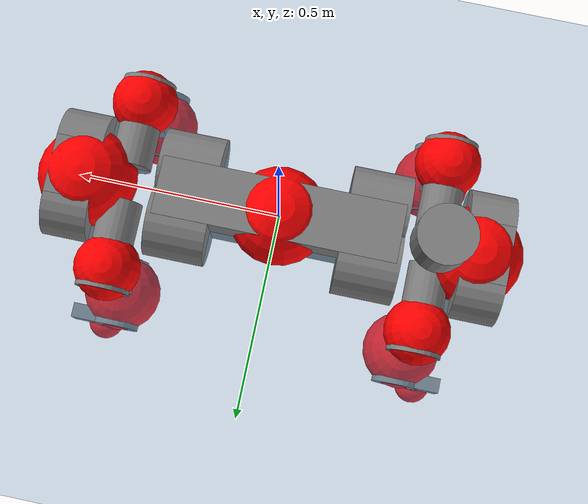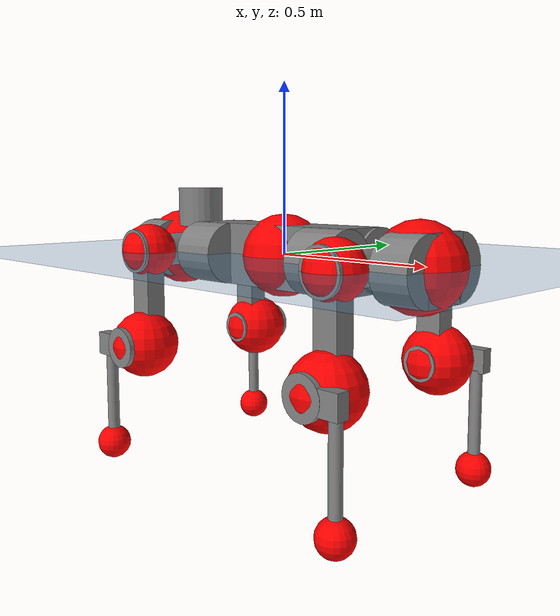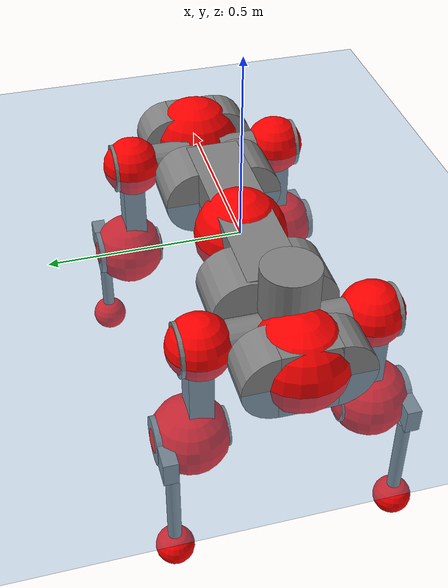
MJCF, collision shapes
<mujoco model="anymal_c">
  <compiler angle="radian" assetdir="assets" balanceinertia="true" inertiafromgeom="false"/>

  <option timestep="0.005" density="1.2" viscosity="2e-05"/>

  <size nkey="1"/>

  <visual>
    <quality shadowsize="8192"/>
    <map shadowclip="0.5"/>
  </visual>

  <default>
    <default class="/">
      <material specular="0" shininess="0.25"/>
      <geom contype="0" conaffinity="0" group="1" solref="-1000 -80"/>
      <site size="0.01 0.005 0.005" group="5"/>
      <general forcelimited="true" forcerange="-80 80" biastype="affine" gainprm="80" biasprm="0 -80 -2"/>
      <default class="anymal_c">
        <joint armature="0.01" damping="0.01" frictionloss="0.1"/>
        <default class="visual">
          <geom type="mesh" group="2"/>
          <default class="visual_zflip"/>
        </default>
        <default class="collision">
          <geom type="cylinder" group="3"/>
          <default class="foot">
            <geom size="0.03 0 0" type="sphere" condim="6" priority="1" friction="0.8 0.02 0.01" solimp="0.015 1 0.03"/>
          </default>
        </default>
      </default>
      <default class="reward_collision_sphere">
        <geom group="5" rgba="1 0 0 1"/>
      </default>
    </default>
  </default>

  <asset>
    <texture type="skybox" colorspace="auto" name="//unnamed_texture_0" builtin="gradient" rgb1="0.95 0.95 0.95" rgb2="0.95 0.95 0.95" width="100" height="600"/>
    <texture type="2d" colorspace="auto" name="texplane" builtin="checker" rgb1="0.345 0.575 0.748" rgb2="0.345 0.575 0.748" markrgb="1 1 1" width="512" height="512"/>
    <texture type="2d" colorspace="linear" name="base" file="base.png"/>
    <texture type="2d" colorspace="linear" name="top_shell" file="top_shell.png"/>
    <texture type="2d" colorspace="linear" name="bottom_shell" file="bottom_shell.png"/>
    <texture type="2d" colorspace="linear" name="remote" file="remote.png"/>
    <texture type="2d" colorspace="linear" name="hatch" file="hatch.png"/>
    <texture type="2d" colorspace="linear" name="handle" file="handle.png"/>
    <texture type="2d" colorspace="linear" name="face" file="face.png"/>
    <texture type="2d" colorspace="linear" name="battery" file="battery.png"/>
    <texture type="2d" colorspace="linear" name="lidar_cage" file="lidar_cage.png"/>
    <texture type="2d" colorspace="linear" name="depth_camera" file="depth_camera.png"/>
    <texture type="2d" colorspace="linear" name="wide_angle_camera" file="wide_angle_camera.png"/>
    <texture type="2d" colorspace="linear" name="lidar" file="lidar.png"/>
    <texture type="2d" colorspace="linear" name="drive" file="drive.png"/>
    <texture type="2d" colorspace="linear" name="hip_l" file="hip_l.png"/>
    <texture type="2d" colorspace="linear" name="shank_l" file="shank_l.png"/>
    <texture type="2d" colorspace="linear" name="foot" file="foot.png"/>
    <texture type="2d" colorspace="linear" name="thigh" file="thigh.png"/>
    <texture type="2d" colorspace="linear" name="shank_r" file="shank_r.png"/>
    <texture type="2d" colorspace="linear" name="hip_r" file="hip_r.png"/>
    <material name="MatPlane" class="/" texture="texplane" texuniform="true" texrepeat="2 2" specular="0.9" shininess="0.5"/>
    <material name="black_plastic" class="/" rgba="0.007 0.007 0.007 1"/>
    <material name="green" class="/" rgba="0.052 0.178 0.033 1"/>
    <material name="red" class="/" rgba="0.178 0.006 0.005 1"/>
    <material name="yellow" class="/" rgba="0.178 0.119 0.006 1"/>
    <material name="lwl" class="/" rgba="0.8 0.8 0.8 1"/>
    <material name="base" class="/" texture="base"/>
    <material name="top_shell" class="/" texture="top_shell"/>
    <material name="bottom_shell" class="/" texture="bottom_shell"/>
    <material name="hip_l" class="/" texture="hip_l"/>
    <material name="thigh" class="/" texture="thigh"/>
    <material name="shank_l" class="/" texture="shank_l"/>
    <material name="foot" class="/" texture="foot"/>
    <material name="hip_r" class="/" texture="hip_r"/>
    <material name="shank" class="/" texture="shank_r"/>
    <material name="hatch" class="/" texture="hatch"/>
    <material name="remote" class="/" texture="remote"/>
    <material name="handle" class="/" texture="handle"/>
    <material name="face" class="/" texture="face"/>
    <material name="depth_camera" class="/" texture="depth_camera"/>
    <material name="wide_angle_camera" class="/" texture="wide_angle_camera"/>
    <material name="battery" class="/" texture="battery"/>
    <material name="lidar_cage" class="/" texture="lidar_cage"/>
    <material name="lidar" class="/" texture="lidar"/>
    <material name="drive" class="/" texture="drive"/>
    <mesh name="base_0" class="/" file="base_0.obj"/>
    <mesh name="base_1" class="/" file="base_1.obj"/>
    <mesh name="base_2" class="/" file="base_2.obj"/>
    <mesh name="base_3" class="/" file="base_3.obj"/>
    <mesh name="base_4" class="/" file="base_4.obj"/>
    <mesh name="base_5" class="/" file="base_5.obj"/>
    <mesh name="top_shell" class="/" file="top_shell.obj"/>
    <mesh name="bottom_shell" class="/" file="bottom_shell.obj"/>
    <mesh name="remote" class="/" file="remote.obj"/>
    <mesh name="handle" class="/" file="handle.obj"/>
    <mesh name="face" class="/" file="face.obj"/>
    <mesh name="wide_angle_camera" class="/" file="wide_angle_camera.obj"/>
    <mesh name="depth_camera" class="/" file="depth_camera.obj"/>
    <mesh name="battery" class="/" file="battery.obj"/>
    <mesh name="lidar_cage" class="/" file="lidar_cage.obj"/>
    <mesh name="lidar" class="/" file="lidar.obj"/>
    <mesh name="drive" class="/" file="drive.obj"/>
    <mesh name="hip_l" class="/" file="hip_l.obj"/>
    <mesh name="thigh" class="/" file="thigh.obj"/>
    <mesh name="shank_l" class="/" file="shank_l.obj"/>
    <mesh name="foot" class="/" file="foot.obj"/>
    <mesh name="hip_r" class="/" file="hip_r.obj"/>
    <mesh name="hatch" class="/" file="hatch.obj"/>
    <mesh name="shank_r" class="/" file="shank_r.obj"/>
  </asset>

  <worldbody>
    <geom name="floor" class="/" size="100 100 0.125" type="plane" group="0" material="MatPlane"/>
    <light name="toplight_shadow" class="/" pos="0 0 5" dir="0.0990148 0.0990148 -0.990148" type="directional" ambient="0.04 0.04 0.04" diffuse="0.55 0.55 0.55" specular="0.12 0.12 0.12"/>
    <light name="toplight_fill" class="/" pos="0 0 5" dir="0.0990148 0.0990148 -0.990148" type="directional" castshadow="false" ambient="0.04 0.04 0.04" diffuse="0.3 0.3 0.3" specular="0.08 0.08 0.08"/>
    <body name="trunk" childclass="anymal_c" pos="3.2625e-06 -0.000289196 -0.00256989" quat="0.999999 0.00108811 -4.50125e-05 0.000537582">
      <inertial pos="0.00303857 0.00168671 0.0509805" quat="0.498984 0.508378 0.500713 0.491787" mass="20.7747" diaginertia="0.922751 0.591423 0.247222"/>
      <joint name="//unnamed_joint_0" type="free" armature="0" damping="0" frictionloss="0"/>
      <geom name="//unnamed_geom_1" class="visual" material="green" mesh="base_0"/>
      <geom name="//unnamed_geom_2" class="visual" material="yellow" mesh="base_1"/>
      <geom name="//unnamed_geom_3" class="visual" material="red" mesh="base_2"/>
      <geom name="//unnamed_geom_4" class="visual" material="black_plastic" mesh="base_3"/>
      <geom name="//unnamed_geom_5" class="visual" material="lwl" mesh="base_4"/>
      <geom name="//unnamed_geom_6" class="visual" material="base" mesh="base_5"/>
      <geom name="trunk_1" class="collision" size="0.296703 0.0716179 0.0920801" type="box"/>
      <geom name="trunk_2" class="collision" size="0.0920801 0.0741757" pos="0.232586 0.0686969 0" quat="0.707107 0 0.707107 0"/>
      <geom name="trunk_3" class="collision" size="0.0920801 0.0741757" pos="-0.232586 0.0686969 0" quat="0.707107 0 0.707107 0"/>
      <geom name="trunk_4" class="collision" size="0.0920801 0.0741757" pos="0.232586 -0.0686969 0" quat="0.707107 0 0.707107 0"/>
      <geom name="trunk_5" class="collision" size="0.0920801 0.0741757" pos="-0.232586 -0.0686969 0" quat="0.707107 0 0.707107 0"/>
      <geom name="//unnamed_geom_12" class="visual" material="top_shell" mesh="top_shell"/>
      <geom name="//unnamed_geom_13" class="visual" material="bottom_shell" mesh="bottom_shell"/>
      <geom name="//unnamed_geom_14" class="visual" material="remote" mesh="remote"/>
      <geom name="//unnamed_geom_15" class="visual" material="handle" mesh="handle"/>
      <geom name="//unnamed_geom_16" class="visual" pos="0.44325 0 0" quat="1 0 0 0" material="face" mesh="face"/>
      <geom name="trunk_6" class="collision" size="0.0562712 0.0716179 0.0920801" pos="0.502065 0 0" type="box"/>
      <geom name="//unnamed_geom_18" class="collision" size="0.0920801 0.0562712" pos="0.502065 0.0686969 0" quat="0.707107 0 0.707107 0"/>
      <geom name="//unnamed_geom_19" class="collision" size="0.0920801 0.0562712" pos="0.502065 -0.0686969 0" quat="0.707107 0 0.707107 0"/>
      <geom name="//unnamed_geom_20" class="visual" pos="0.493669 0 -0.0293571" quat="0.965926 0 0.258819 0" material="depth_camera" mesh="depth_camera"/>
      <geom name="//unnamed_geom_21" class="visual" pos="0.548582 0 0.0152483" material="wide_angle_camera" mesh="wide_angle_camera"/>
      <geom name="//unnamed_geom_22" class="visual_zflip" pos="-0.44325 0 0" quat="0 0 0 1" material="face" mesh="face"/>
      <geom name="trunk_7" class="collision" size="0.0562712 0.0716179 0.0920801" pos="-0.502065 0 0" quat="0 0 0 1" type="box"/>
      <geom name="//unnamed_geom_24" class="collision" size="0.0920801 0.0562712" pos="-0.502065 -0.0686969 0" quat="0 -0.707107 0 0.707107"/>
      <geom name="//unnamed_geom_25" class="collision" size="0.0920801 0.0562712" pos="-0.502065 0.0686969 0" quat="0 -0.707107 0 0.707107"/>
      <geom name="//unnamed_geom_26" class="visual" pos="-0.493669 0 -0.0293571" quat="0 -0.258819 0 0.965926" material="depth_camera" mesh="depth_camera"/>
      <geom name="//unnamed_geom_27" class="visual_zflip" pos="-0.548582 0 0.0152483" quat="0 0 0 1" material="wide_angle_camera" mesh="wide_angle_camera"/>
      <geom name="//unnamed_geom_28" class="visual" material="battery" mesh="battery"/>
      <geom name="//unnamed_geom_29" class="visual" pos="0 0.07388 0.029976" quat="0.683013 -0.183013 0.183013 0.683013" material="depth_camera" mesh="depth_camera"/>
      <geom name="//unnamed_geom_30" class="visual" pos="0 -0.07388 0.029976" quat="0.683013 0.183013 0.183013 -0.683013" material="depth_camera" mesh="depth_camera"/>
      <geom name="//unnamed_geom_31" class="visual" pos="-0.389248 0 0.0748666" quat="1 0 0 0" material="lidar_cage" mesh="lidar_cage"/>
      <geom name="trunk_8" class="collision" size="0.0716179 0.0613867" pos="-0.389248 0 0.135982"/>
      <geom name="//unnamed_geom_33" class="visual" pos="-0.389248 -3.45641e-05 0.144844" quat="0.707107 0 0 -0.707107" material="lidar" mesh="lidar"/>
      <geom name="//unnamed_geom_34" class="visual" pos="0.320701 0.102077 -6.41858e-10" quat="0.258819 0.965926 0 0" material="drive" mesh="drive"/>
      <geom name="//unnamed_geom_35" class="visual" pos="0.320701 -0.102077 6.41858e-10" quat="0.258819 -0.965926 0 0" material="drive" mesh="drive"/>
      <geom name="//unnamed_geom_36" class="visual" pos="-0.320701 0.102077 6.41858e-10" quat="0 0 0.965926 -0.258819" material="drive" mesh="drive"/>
      <geom name="//unnamed_geom_37" class="visual" pos="-0.320701 -0.102077 -6.41858e-10" quat="0 0 -0.965926 -0.258819" material="drive" mesh="drive"/>
      <geom name="//unnamed_geom_38" class="visual" pos="0.124046 0 0.0743573" quat="1 0 0 0" material="hatch" mesh="hatch"/>
      <geom name="//unnamed_geom_39" class="reward_collision_sphere" size="0.122773"/>
      <geom name="//unnamed_geom_40" class="reward_collision_sphere" size="0.122773" pos="0.481213 0 0"/>
      <geom name="//unnamed_geom_41" class="reward_collision_sphere" size="0.122773" pos="-0.481213 0 0"/>
      <site name="imu" pos="0.262671 0.0102463 0.0387342" size="0.0102311"/>
      <camera name="track" pos="0 -1.96277 0" quat="0.707107 0.707107 0 0" mode="trackcom"/>
      <camera name="ego_camera" pos="0.481213 0 -0.0407437" quat="-0.5 -0.5 0.5 0.5"/>
      <body name="LF_HIP" pos="0.320874 0.101712 0.00148747" quat="0.258765 0.96594 1.16879e-05 1.74139e-05">
        <inertial pos="0.0583382 -0.0151119 -0.0107873" quat="-0.126986 0.718621 -0.132202 0.670806" mass="2.96459" diaginertia="0.00830052 0.00451781 0.00358821"/>
        <joint name="LF_HAA" pos="0 0 0" axis="0.99997 -0.00554175 -0.00548769" range="-0.714021 0.490084" armature="0.0103148" damping="0.00312596" frictionloss="0.102501"/>
        <geom name="//unnamed_geom_42" class="visual" pos="0 -3.77576e-05 6.20165e-06" quat="0.258819 -0.965926 0 0" material="hip_l" mesh="hip_l"/>
        <geom name="//unnamed_geom_43" class="visual" pos="0.0640547 -0.0764708 -0.0444257" quat="0.183013 -0.683013 0.683013 0.183013" material="drive" mesh="drive"/>
        <geom name="//unnamed_geom_44" class="collision" size="0.0511556 0.0716179" pos="0.0640547 -0.0117372 -0.00703338" quat="-0.353553 -0.612372 0.612372 -0.353553"/>
        <body name="LF_THIGH" pos="0.0627107 -0.0709778 -0.0409358" quat="0.183076 -0.683147 0.682895 0.182886">
          <inertial pos="0.0331627 -0.000206963 -0.250728" quat="0.992732 -0.00574421 -0.0857496 0.0842462" mass="3.16222" diaginertia="0.0407522 0.0264918 0.0043616"/>
          <joint name="LF_HFE" pos="0 0 0" axis="0.999998 -0.00200595 0.00078849" stiffness="0.00391052" range="-3.15054 3.13674" armature="0.009607" damping="0.0143542" frictionloss="0.101962"/>
          <geom name="//unnamed_geom_45" class="visual" pos="0.00175041 2.75824e-06 0" quat="0.707107 0 0 -0.707107" material="thigh" mesh="thigh"/>
          <geom name="//unnamed_geom_46" class="collision" size="0.0665023 0.0409245" pos="0.0427745 0 0" quat="0.5 0.5 -0.5 -0.5"/>
          <geom name="//unnamed_geom_47" class="collision" size="0.0383667 0.0306934 0.14458" pos="0.0320808 0 -0.143941" quat="0.707107 0 0 -0.707107" type="box"/>
          <geom name="//unnamed_geom_48" class="visual" pos="0.107257 0 -0.290299" quat="1 0 0 0" material="drive" mesh="drive"/>
          <geom name="//unnamed_geom_49" class="collision" size="0.0511556 0.0716179" pos="0.0324016 0 -0.290299" quat="0.707107 0 0.707107 0"/>
          <geom name="//unnamed_geom_50" class="reward_collision_sphere" size="0.081849" pos="0.026734 0 0"/>
          <body name="LF_SHANK" pos="0.106203 -0.00035551 -0.290938" quat="1 -9.72005e-06 -1.457e-05 5.13515e-05">
            <inertial pos="0.00321655 -0.0625616 -0.0820038" quat="0.992651 -0.117996 -0.00160606 -0.0267859" mass="0.624464" diaginertia="0.0137227 0.00840238 0.00122607"/>
            <joint name="LF_KFE" pos="0 0 0" axis="0.999993 0.00127395 -0.00340162" stiffness="0.00014369" range="-3.19216 3.14657" armature="0.010603" damping="0.0133466" frictionloss="0.115573"/>
            <geom name="//unnamed_geom_51" class="visual" pos="0.00057077 0.00304338 0" quat="0.707107 0 0 -0.707107" material="shank_l" mesh="shank_l"/>
            <geom name="LF_kfe_act" class="collision" size="0.0613867 0.0204622" pos="0.0213872 0 0" quat="0.5 0.5 -0.5 -0.5"/>
            <geom name="//unnamed_geom_53" class="collision" size="0.0588279 0.03453 0.0194391" pos="0.0213872 -0.0564286 0" quat="0.5 0.5 -0.5 -0.5" type="box"/>
            <geom name="//unnamed_geom_54" class="visual" pos="0.013955 -0.0853319 -0.344254" quat="0.382683 0 0 -0.92388" material="foot" mesh="foot"/>
            <geom name="LF_calf" class="collision" size="0.0179045 0.144517" pos="0.0139552 -0.0863127 -0.172127" quat="0.707107 0 0 -0.707107"/>
            <geom name="LF_foot" class="foot" size="0.0304601" pos="0.0139552 -0.0863127 -0.321335" quat="0.707107 0 0 -0.707107"/>
            <geom name="//unnamed_geom_57" class="reward_collision_sphere" size="0.102311" pos="-0.0534681 0 0"/>
            <geom name="//unnamed_geom_58" class="reward_collision_sphere" size="0.0511556" pos="0.0139552 -0.0863127 -0.321335"/>
            <site name="LF_foot" class="foot" pos="0.0139552 -0.0863127 -0.321335" quat="0.707107 0 0 -0.707107" size="0.0102311"/>
          </body>
        </body>
      </body>
      <body name="RF_HIP" pos="0.321255 -0.102843 0.000962878" quat="0.25885 -0.965917 -0.000126319 -0.00119247">
        <inertial pos="0.0615214 0.0153049 -0.00808261" quat="0.14751 0.675178 0.128201 0.711295" mass="3.11399" diaginertia="0.00824187 0.00453408 0.00364728"/>
        <joint name="RF_HAA" pos="0 0 0" axis="0.999999 0.000211188 -0.00109575" range="-0.544536 0.722081" armature="0.00975569" damping="0.00853244" frictionloss="0.106581"/>
        <geom name="//unnamed_geom_59" class="visual" pos="0 3.77573e-05 6.20164e-06" quat="0.258819 0.965926 0 0" material="hip_r" mesh="hip_r"/>
        <geom name="//unnamed_geom_60" class="visual" pos="0.0640547 0.0764708 -0.0444257" quat="0.183013 0.683013 0.683013 -0.183013" material="drive" mesh="drive"/>
        <geom name="//unnamed_geom_61" class="collision" size="0.0511556 0.0716179" pos="0.0640547 0.0117372 -0.00703338" quat="-0.353553 0.612372 0.612372 0.353553"/>
        <body name="RF_THIGH" pos="0.0643819 0.0704038 -0.0425033" quat="0.182965 0.68307 0.683027 -0.182792">
          <inertial pos="0.0333716 -0.000374499 -0.249137" quat="0.992697 -0.00483446 -0.0771751 0.0925952" mass="3.34952" diaginertia="0.0424643 0.0265446 0.00455148"/>
          <joint name="RF_HFE" pos="0 0 0" axis="0.999997 -0.00220321 -0.000605327" stiffness="0.0118969" range="-3.14189 3.13193" armature="0.0105223" damping="0" frictionloss="0.0934275"/>
          <geom name="//unnamed_geom_62" class="visual" pos="0.00175041 2.75824e-06 0" quat="0.707107 0 0 -0.707107" material="thigh" mesh="thigh"/>
          <geom name="//unnamed_geom_63" class="collision" size="0.0665023 0.0409245" pos="0.0427745 0 0" quat="0.5 0.5 0.5 0.5"/>
          <geom name="//unnamed_geom_64" class="collision" size="0.0383667 0.0306934 0.14458" pos="0.0320808 0 -0.143941" quat="0.707107 0 0 0.707107" type="box"/>
          <geom name="//unnamed_geom_65" class="visual" pos="0.107257 0 -0.290299" quat="1 0 0 0" material="drive" mesh="drive"/>
          <geom name="//unnamed_geom_66" class="collision" size="0.0511556 0.0716179" pos="0.0324016 0 -0.290299" quat="0.707107 0 0.707107 0"/>
          <geom name="//unnamed_geom_67" class="reward_collision_sphere" size="0.081849" pos="0.026734 0 0"/>
          <body name="RF_SHANK" pos="0.104427 -0.000560904 -0.290703" quat="1 -0.0001101 0.000282165 0.000290778">
            <inertial pos="0.00692962 0.0578015 -0.0801547" quat="0.993269 0.110397 -0.00942586 0.0337707" mass="0.614274" diaginertia="0.0136934 0.00838293 0.00117953"/>
            <joint name="RF_KFE" pos="0 0 0" axis="1 0.000331012 -3.08059e-05" range="-3.13363 3.13751" armature="0.0103055" damping="0" frictionloss="0.103321"/>
            <geom name="//unnamed_geom_68" class="visual" pos="0.000570767 -0.00304337 0" quat="0.707107 0 0 0.707107" material="shank" mesh="shank_r"/>
            <geom name="RF_kfe_act" class="collision" size="0.0613867 0.0204622" pos="0.0213872 0 0" quat="0.5 0.5 0.5 0.5"/>
            <geom name="//unnamed_geom_70" class="collision" size="0.0588279 0.03453 0.0194391" pos="0.0213872 0.0564286 0" quat="0.5 0.5 0.5 0.5" type="box"/>
            <geom name="//unnamed_geom_71" class="visual" pos="0.0139553 0.0853319 -0.344254" quat="0.382683 0 0 0.92388" material="foot" mesh="foot"/>
            <geom name="RF_calf" class="collision" size="0.0179045 0.144517" pos="0.0139552 0.0863127 -0.172127" quat="0.707107 0 0 0.707107"/>
            <geom name="RF_foot" class="foot" size="0.0288347" pos="0.0139552 0.0863127 -0.321335" quat="0.707107 0 0 0.707107"/>
            <geom name="//unnamed_geom_74" class="reward_collision_sphere" size="0.102311" pos="-0.0534681 0 0"/>
            <geom name="//unnamed_geom_75" class="reward_collision_sphere" size="0.0511556" pos="0.0139552 0.0863127 -0.321335"/>
            <site name="RF_foot" class="foot" pos="0.0139552 0.0863127 -0.321335" quat="0.707107 0 0 0.707107" size="0.0102311"/>
          </body>
        </body>
      </body>
      <body name="LH_HIP" pos="-0.319994 0.101374 0.002097" quat="-0.000437475 0.000337127 0.965855 -0.259082">
        <inertial pos="0.0617908 0.0124195 -0.0111193" quat="0.138172 0.680474 0.12844 0.708073" mass="2.95572" diaginertia="0.00817837 0.00441682 0.00351786"/>
        <joint name="LH_HAA" pos="0 0 0" axis="0.999921 0.00861269 0.00911927" stiffness="0.00094046" range="-0.538518 0.770736" armature="0.0112934" damping="0.0134403" frictionloss="0.101848"/>
        <geom name="//unnamed_geom_76" class="visual" pos="0 3.77573e-05 6.20164e-06" quat="-0.258819 -0.965926 0 0" material="hip_r" mesh="hip_r"/>
        <geom name="//unnamed_geom_77" class="visual" pos="0.0640547 0.0764708 -0.0444257" quat="0.183013 0.683013 0.683013 -0.183013" material="drive" mesh="drive"/>
        <geom name="//unnamed_geom_78" class="collision" size="0.0511556 0.0716179" pos="0.0640547 0.0117372 -0.00703338" quat="-0.353553 0.612372 0.612372 0.353553"/>
        <body name="LH_THIGH" pos="0.0633814 0.0693681 -0.0408229" quat="0.183467 0.682589 0.683452 -0.182496">
          <inertial pos="0.0356268 -0.00157358 -0.252623" quat="0.992761 -0.00549002 -0.0807375 0.0887531" mass="3.37253" diaginertia="0.0450006 0.0280205 0.0048025"/>
          <joint name="LH_HFE" pos="0 0 0" axis="0.999906 -0.0136739 -0.000403326" range="-3.16043 3.14934" armature="0.0105573" damping="0" frictionloss="0.100113"/>
          <geom name="//unnamed_geom_79" class="visual" pos="0.00175041 2.75824e-06 0" quat="0.707107 0 0 -0.707107" material="thigh" mesh="thigh"/>
          <geom name="//unnamed_geom_80" class="collision" size="0.0665023 0.0409245" pos="0.0427745 0 0" quat="0.5 0.5 -0.5 -0.5"/>
          <geom name="//unnamed_geom_81" class="collision" size="0.0383667 0.0306934 0.14458" pos="0.0320808 0 -0.143941" quat="0.707107 0 0 -0.707107" type="box"/>
          <geom name="//unnamed_geom_82" class="visual" pos="0.107257 0 -0.290299" quat="1 0 0 0" material="drive" mesh="drive"/>
          <geom name="//unnamed_geom_83" class="collision" size="0.0511556 0.0716179" pos="0.0324016 0 -0.290299" quat="0.707107 0 0.707107 0"/>
          <geom name="//unnamed_geom_84" class="reward_collision_sphere" size="0.081849" pos="0.026734 0 0"/>
          <body name="LH_SHANK" pos="0.106771 0.000378881 -0.292312" quat="0.999999 -0.000204969 -0.00074405 -0.00069038">
            <inertial pos="0.00331666 0.0609173 -0.0846987" quat="0.992394 0.119723 0.00984981 0.0269035" mass="0.624262" diaginertia="0.0140265 0.00828151 0.00119895"/>
            <joint name="LH_KFE" pos="0 0 0" axis="0.999983 -0.00384341 0.00431191" stiffness="0.00193708" range="-3.14871 3.0883" armature="0.0114675" damping="0" frictionloss="0.102053"/>
            <geom name="//unnamed_geom_85" class="visual" pos="0.000570767 -0.00304337 0" quat="-0.707107 0 0 -0.707107" material="shank" mesh="shank_r"/>
            <geom name="LH_kfe_act" class="collision" size="0.0613867 0.0204622" pos="0.0213872 0 0" quat="0.5 0.5 -0.5 -0.5"/>
            <geom name="//unnamed_geom_87" class="collision" size="0.0588279 0.03453 0.0194391" pos="0.0213872 0.0564286 0" quat="0.5 0.5 -0.5 -0.5" type="box"/>
            <geom name="//unnamed_geom_88" class="visual" pos="0.0139553 0.0853319 -0.344254" quat="-0.382683 0 0 -0.92388" material="foot" mesh="foot"/>
            <geom name="LH_calf" class="collision" size="0.0179045 0.144517" pos="0.0139552 0.0863127 -0.172127" quat="0.707107 0 0 -0.707107"/>
            <geom name="LH_foot" class="foot" size="0.0312544" pos="0.0139552 0.0863127 -0.321335" quat="0.707107 0 0 -0.707107"/>
            <geom name="//unnamed_geom_91" class="reward_collision_sphere" size="0.102311" pos="-0.0534681 0 0"/>
            <geom name="//unnamed_geom_92" class="reward_collision_sphere" size="0.0511556" pos="0.0139552 0.0863127 -0.321335"/>
            <site name="LH_foot" class="foot" pos="0.0139552 0.0863127 -0.321335" quat="0.707107 0 0 -0.707107" size="0.0102311"/>
          </body>
        </body>
      </body>
      <body name="RH_HIP" pos="-0.317999 -0.102198 0.00260545" quat="-5.21413e-05 -2.19258e-05 -0.965907 -0.258888">
        <inertial pos="0.0587608 -0.0156429 -0.00869571" quat="-0.117079 0.711508 -0.139611 0.678643" mass="2.97362" diaginertia="0.00871546 0.00462617 0.00372689"/>
        <joint name="RH_HAA" pos="0 0 0" axis="0.999904 0.00414589 0.0132022" range="-0.718092 0.489662" armature="0.0102971" damping="0.01132" frictionloss="0.115684"/>
        <geom name="//unnamed_geom_93" class="visual" pos="0 -3.77576e-05 6.20165e-06" quat="-0.258819 0.965926 0 0" material="hip_l" mesh="hip_l"/>
        <geom name="//unnamed_geom_94" class="visual" pos="0.0640547 -0.0764708 -0.0444257" quat="-0.183013 0.683013 -0.683013 -0.183013" material="drive" mesh="drive"/>
        <geom name="//unnamed_geom_95" class="collision" size="0.0511556 0.0716179" pos="0.0640547 -0.0117372 -0.00703338" quat="0.353553 0.612372 -0.612372 0.353553"/>
        <body name="RH_THIGH" pos="0.063724 -0.0711209 -0.0435473" quat="-0.18309 0.68315 -0.682824 -0.183127">
          <inertial pos="0.0326029 -0.00012173 -0.252298" quat="0.993093 -0.00966418 -0.0800557 0.0852249" mass="3.22261" diaginertia="0.0439804 0.0276688 0.00459291"/>
          <joint name="RH_HFE" pos="0 0 0" axis="0.999999 0.000347762 0.00115464" stiffness="0.00151475" range="-3.14277 3.1126" armature="0.0100414" damping="0.0108683" frictionloss="0.10765"/>
          <geom name="//unnamed_geom_96" class="visual" pos="0.00175041 2.75824e-06 0" quat="0.707107 0 0 -0.707107" material="thigh" mesh="thigh"/>
          <geom name="//unnamed_geom_97" class="collision" size="0.0665023 0.0409245" pos="0.0427745 0 0" quat="0.5 0.5 0.5 0.5"/>
          <geom name="//unnamed_geom_98" class="collision" size="0.0383667 0.0306934 0.14458" pos="0.0320808 0 -0.143941" quat="0.707107 0 0 0.707107" type="box"/>
          <geom name="//unnamed_geom_99" class="visual" pos="0.107257 0 -0.290299" quat="1 0 0 0" material="drive" mesh="drive"/>
          <geom name="//unnamed_geom_100" class="collision" size="0.0511556 0.0716179" pos="0.0324016 0 -0.290299" quat="0.707107 0 0.707107 0"/>
          <geom name="//unnamed_geom_101" class="reward_collision_sphere" size="0.081849" pos="0.026734 0 0"/>
          <body name="RH_SHANK" pos="0.104602 0.00195134 -0.291788" quat="0.999999 -0.000651984 -0.000673952 -0.000869071">
            <inertial pos="0.00491937 -0.0598766 -0.0819306" quat="0.992163 -0.123128 -0.00833618 -0.0195579" mass="0.640215" diaginertia="0.0143862 0.00847345 0.00119822"/>
            <joint name="RH_KFE" pos="0 0 0" axis="0.999883 0.00313086 0.0149643" range="-3.08037 3.15496" armature="0.0100661" damping="0" frictionloss="0.107688"/>
            <geom name="//unnamed_geom_102" class="visual" pos="0.00057077 0.00304338 0" quat="0.707107 0 0 -0.707107" material="shank_l" mesh="shank_l"/>
            <geom name="RH_kfe_act" class="collision" size="0.0613867 0.0204622" pos="0.0213872 0 0" quat="0.5 0.5 0.5 0.5"/>
            <geom name="//unnamed_geom_104" class="collision" size="0.0588279 0.03453 0.0194391" pos="0.0213872 -0.0564286 0" quat="0.5 0.5 0.5 0.5" type="box"/>
            <geom name="//unnamed_geom_105" class="visual" pos="0.013955 -0.0853319 -0.344254" quat="0.382683 0 0 -0.92388" material="foot" mesh="foot"/>
            <geom name="RH_calf" class="collision" size="0.0179045 0.144517" pos="0.0139552 -0.0863127 -0.172127" quat="0.707107 0 0 0.707107"/>
            <geom name="RH_foot" class="foot" size="0.0309431" pos="0.0139552 -0.0863127 -0.321335" quat="0.707107 0 0 0.707107"/>
            <geom name="//unnamed_geom_108" class="reward_collision_sphere" size="0.102311" pos="-0.0534681 0 0"/>
            <geom name="//unnamed_geom_109" class="reward_collision_sphere" size="0.0511556" pos="0.0139552 -0.0863127 -0.321335"/>
            <site name="RH_foot" class="foot" pos="0.0139552 -0.0863127 -0.321335" quat="0.707107 0 0 0.707107" size="0.0102311"/>
          </body>
        </body>
      </body>
    </body>
  </worldbody>

  <contact>
    <pair class="/" geom1="floor" geom2="LF_foot" name="//unnamed_contact_0"/>
    <pair class="/" geom1="floor" geom2="RF_foot" name="//unnamed_contact_1"/>
    <pair class="/" geom1="floor" geom2="LH_foot" name="//unnamed_contact_2"/>
    <pair class="/" geom1="floor" geom2="RH_foot" name="//unnamed_contact_3"/>
  </contact>

  <actuator>
    <general name="LF_HAA" class="/" joint="LF_HAA" forcerange="-83.5155 83.5155" gainprm="82.7276" biasprm="0 -82.7276 -1.94101"/>
    <general name="LF_HFE" class="/" joint="LF_HFE" forcerange="-79.191 79.191" gainprm="82.7276" biasprm="0 -82.7276 -1.94101"/>
    <general name="LF_KFE" class="/" joint="LF_KFE" forcerange="-83.5308 83.5308" gainprm="82.7276" biasprm="0 -82.7276 -1.94101"/>
    <general name="RF_HAA" class="/" joint="RF_HAA" forcerange="-83.4077 83.4077" gainprm="82.7276" biasprm="0 -82.7276 -1.94101"/>
    <general name="RF_HFE" class="/" joint="RF_HFE" forcerange="-84.55 84.55" gainprm="82.7276" biasprm="0 -82.7276 -1.94101"/>
    <general name="RF_KFE" class="/" joint="RF_KFE" forcerange="-83.0477 83.0477" gainprm="82.7276" biasprm="0 -82.7276 -1.94101"/>
    <general name="LH_HAA" class="/" joint="LH_HAA" forcerange="-82.9518 82.9518" gainprm="82.7276" biasprm="0 -82.7276 -1.94101"/>
    <general name="LH_HFE" class="/" joint="LH_HFE" forcerange="-74.4737 74.4737" gainprm="82.7276" biasprm="0 -82.7276 -1.94101"/>
    <general name="LH_KFE" class="/" joint="LH_KFE" forcerange="-89.9054 89.9054" gainprm="82.7276" biasprm="0 -82.7276 -1.94101"/>
    <general name="RH_HAA" class="/" joint="RH_HAA" forcerange="-82.2326 82.2326" gainprm="82.7276" biasprm="0 -82.7276 -1.94101"/>
    <general name="RH_HFE" class="/" joint="RH_HFE" forcerange="-84.8548 84.8548" gainprm="82.7276" biasprm="0 -82.7276 -1.94101"/>
    <general name="RH_KFE" class="/" joint="RH_KFE" forcerange="-83.646 83.646" gainprm="82.7276" biasprm="0 -82.7276 -1.94101"/>
  </actuator>

  <sensor>
    <gyro site="imu" name="imu_angular_velocity"/>
    <velocimeter site="imu" name="imu_linear_velocity"/>
    <framelinvel objtype="site" objname="LF_foot" name="LF_foot_global_linear_velocity"/>
    <framelinvel objtype="site" objname="RF_foot" name="RF_foot_global_linear_velocity"/>
    <framelinvel objtype="site" objname="LH_foot" name="LH_foot_global_linear_velocity"/>
    <framelinvel objtype="site" objname="RH_foot" name="RH_foot_global_linear_velocity"/>
  </sensor>

  <keyframe>
    <key name="home" qpos="0 0 0.55 1 0 0 0 0 0.4 -0.8 0 -0.4 0.8 0 -0.4 0.8 0 0.4 -0.8"/>
  </keyframe>
</mujoco>
